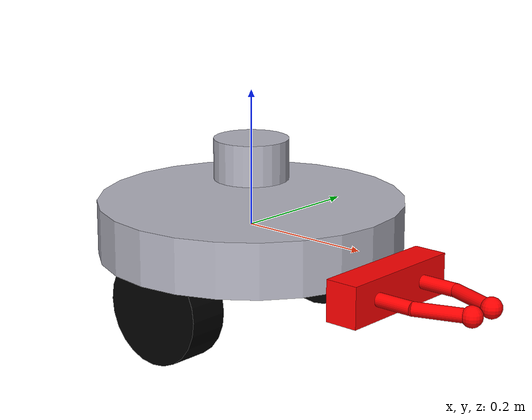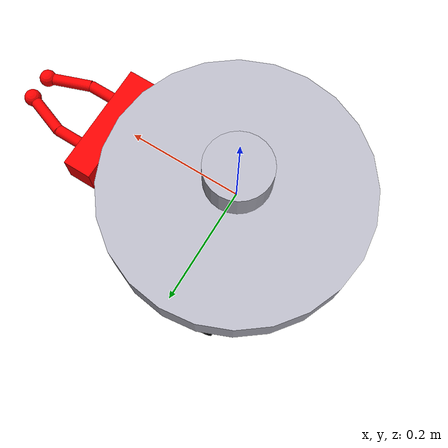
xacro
<?xml version="1.0"?>
<robot xmlns:xacro="http://www.ros.org/wiki/xacro" name="gpu_slam_bot">

  <!-- Robot parameters -->
  <xacro:property name="base_radius" value="0.225"/> <!-- Equivalent to your length/2 -->
  <xacro:property name="base_height" value="0.08"/>
  <xacro:property name="wheel_radius" value="0.08"/>
  <xacro:property name="wheel_width" value="0.06"/>
  <xacro:property name="wheel_separation" value="0.35"/>
  <xacro:property name="caster_radius" value="0.03"/>
  <xacro:property name="pusher_depth" value="0.05"/>
  <xacro:property name="pusher_width" value="0.20"/>
  <xacro:property name="pusher_height" value="0.06"/>
  <xacro:property name="arm_length" value="0.08"/>
  <xacro:property name="tip_length" value="0.08"/>
  <xacro:property name="arm_radius" value="0.01"/>
  <xacro:property name="sphere_radius" value="0.015"/>
  <xacro:property name="arm_mass" value="0.05"/>
  <xacro:property name="tip_mass" value="0.05"/>
  <xacro:property name="sphere_mass" value="0.015"/>
  <xacro:property name="gripper_arm_separation" value="0.10"/>
  <xacro:property name="curve_angle" value="0.349"/>

  <!-- Materials -->
  <material name="metallic_gray"><color rgba="0.7 0.7 0.75 1"/></material>
  <material name="wheel_black"><color rgba="0 0 0 1"/></material>
  <material name="stripe_green"><color rgba="0 1 0 1"/></material>
  <material name="pusher_red"><color rgba="1 0 0 1"/></material>

  <!-- Base link - Now cylindrical for round appearance -->
  <link name="base_link">
    <visual>
      <origin xyz="0 0 0" rpy="0 0 0"/>
      <geometry>
        <cylinder length="${base_height}" radius="${base_radius}"/>
      </geometry>
      <material name="metallic_gray"/>
    </visual>
    <collision>
      <origin xyz="0 0 0" rpy="0 0 0"/>
      <geometry>
        <cylinder length="${base_height}" radius="${base_radius}"/>
      </geometry>
    </collision>
    <inertial>
      <origin xyz="0 0 0"/>
      <mass value="3.0"/>
      <inertia ixx="${(1/12)*3.0*(3*base_radius*base_radius + base_height*base_height)}"
               iyy="${(1/12)*3.0*(3*base_radius*base_radius + base_height*base_height)}"
               izz="${0.5*3.0*base_radius*base_radius}"
               ixy="0" ixz="0" iyz="0"/>
    </inertial>
  </link>

  <!-- Lidar -->
  <link name="lidar_link">
    <visual>
      <origin xyz="0 0 0.03" rpy="0 0 0"/>
      <geometry>
        <cylinder length="0.06" radius="0.055"/>
      </geometry>
      <material name="metallic_gray"/>
    </visual>
    <collision>
      <origin xyz="0 0 0.03" rpy="0 0 0"/>
      <geometry>
        <cylinder length="0.06" radius="0.055"/>
      </geometry>
    </collision>
    <inertial>
      <origin xyz="0 0 0.03"/>
      <mass value="0.2"/>
      <inertia ixx="0.0004" iyy="0.0004" izz="0.0003" ixy="0" ixz="0" iyz="0"/>
    </inertial>
  </link>

  <joint name="lidar_joint" type="fixed">
    <parent link="base_link"/>
    <child link="lidar_link"/>
    <origin xyz="0 0 ${base_height/2 + 0.03}" rpy="0 0 0"/>
  </joint>

  <!-- Left Wheel -->
  <link name="wheel_left">
    <visual>
      <origin xyz="0 0 0" rpy="1.5708 0 0"/>
      <geometry>
        <cylinder length="${wheel_width}" radius="${wheel_radius}"/>
      </geometry>
      <material name="wheel_black"/>
    </visual>
    <collision>
      <origin xyz="0 0 0" rpy="1.5708 0 0"/>
      <geometry>
        <cylinder length="${wheel_width}" radius="${wheel_radius}"/>
      </geometry>
    </collision>
    <inertial>
      <origin xyz="0 0 0"/>
      <mass value="1.5"/>
      <inertia ixx="${(1/12)*1.5*(3*wheel_radius*wheel_radius + wheel_width*wheel_width)}"
               iyy="${0.5*1.5*wheel_radius*wheel_radius}"
               izz="${(1/12)*1.5*(3*wheel_radius*wheel_radius + wheel_width*wheel_width)}"
               ixy="0" ixz="0" iyz="0"/>
    </inertial>
  </link>

  <!-- Right Wheel -->
  <link name="wheel_right">
    <visual>
      <origin xyz="0 0 0" rpy="1.5708 0 0"/>
      <geometry>
        <cylinder length="${wheel_width}" radius="${wheel_radius}"/>
      </geometry>
      <material name="wheel_black"/>
    </visual>
    <collision>
      <origin xyz="0 0 0" rpy="1.5708 0 0"/>
      <geometry>
        <cylinder length="${wheel_width}" radius="${wheel_radius}"/>
      </geometry>
    </collision>
    <inertial>
      <origin xyz="0 0 0"/>
      <mass value="1.5"/>
      <inertia ixx="${(1/12)*1.5*(3*wheel_radius*wheel_radius + wheel_width*wheel_width)}"
               iyy="${0.5*1.5*wheel_radius*wheel_radius}"
               izz="${(1/12)*1.5*(3*wheel_radius*wheel_radius + wheel_width*wheel_width)}"
               ixy="0" ixz="0" iyz="0"/>
    </inertial>
  </link>

  <!-- Wheel joints -->
  <joint name="wheel_left_joint" type="continuous">
    <parent link="base_link"/>
    <child link="wheel_left"/>
    <origin xyz="0 ${wheel_separation/2} ${-wheel_radius}" rpy="0 0 0"/>
    <axis xyz="0 1 0"/>
    <dynamics damping="0.1" friction="0.1"/>
  </joint>

  <joint name="wheel_right_joint" type="continuous">
    <parent link="base_link"/>
    <child link="wheel_right"/>
    <origin xyz="0 ${-wheel_separation/2} ${-wheel_radius}" rpy="0 0 0"/>
    <axis xyz="0 1 0"/>
    <dynamics damping="0.1" friction="0.1"/>
  </joint>

  <!-- Caster - Adjusted position for cylindrical base -->
  <link name="caster_link">
    <visual>
      <origin xyz="0 0 0" rpy="0 0 0"/>
      <geometry><sphere radius="${caster_radius}"/></geometry>
      <material name="metallic_gray"/>
    </visual>
    <collision>
      <origin xyz="0 0 0" rpy="0 0 0"/>
      <geometry><sphere radius="${caster_radius}"/></geometry>
    </collision>
    <inertial>
      <origin xyz="0 0 0"/>
      <mass value="0.1"/>
      <inertia ixx="${(2/5)*0.1*caster_radius*caster_radius}"
               iyy="${(2/5)*0.1*caster_radius*caster_radius}"
               izz="${(2/5)*0.1*caster_radius*caster_radius}"
               ixy="0" ixz="0" iyz="0"/>
    </inertial>
  </link>

  <joint name="caster_joint" type="fixed">
    <parent link="base_link"/>
    <child link="caster_link"/>
    <origin xyz="-${base_radius - 0.05} 0 ${-wheel_radius + caster_radius - 0.005}" rpy="0 0 0"/>
  </joint>

  <!-- Gripper base -->
  <link name="gripper_base_link">
    <visual>
      <origin xyz="0 0 0" rpy="0 0 0"/>
      <geometry><box size="${pusher_depth} ${pusher_width} ${pusher_height}"/></geometry>
      <material name="pusher_red"/>
    </visual>
    <collision>
      <origin xyz="0 0 0" rpy="0 0 0"/>
      <geometry><box size="${pusher_depth} ${pusher_width} ${pusher_height}"/></geometry>
    </collision>
    <inertial>
      <origin xyz="0 0 0"/>
      <mass value="0.1"/>
      <inertia ixx="${(1/12)*0.1*(pusher_width*pusher_width + pusher_height*pusher_height)}"
               iyy="${(1/12)*0.1*(pusher_depth*pusher_depth + pusher_height*pusher_height)}"
               izz="${(1/12)*0.1*(pusher_depth*pusher_depth + pusher_width*pusher_width)}"
               ixy="0" ixz="0" iyz="0"/>
    </inertial>
  </link>

  <joint name="front_lifter_joint" type="prismatic">
    <parent link="base_link"/>
    <child link="gripper_base_link"/>
    <origin xyz="${base_radius + pusher_depth/2} 0 ${-base_height/2}" rpy="0 0 0"/>
    <axis xyz="0 0 1"/>
    <limit effort="15" velocity="0.2" lower="0.0" upper="0.25"/>
    <dynamics damping="0.1" friction="0.1"/>
  </joint>

  <!-- Left gripper arm (proximal) -->
  <link name="left_arm_link">
    <visual>
      <origin xyz="${arm_length/2} 0 0" rpy="0 1.5708 0"/>
      <geometry><cylinder length="${arm_length}" radius="${arm_radius}"/></geometry>
      <material name="pusher_red"/>
    </visual>
    <collision>
      <origin xyz="${arm_length/2} 0 0" rpy="0 1.5708 0"/>
      <geometry><cylinder length="${arm_length}" radius="${arm_radius}"/></geometry>
    </collision>
    <inertial>
      <origin xyz="0 0 0"/>
      <mass value="${arm_mass}"/>
      <inertia ixx="${0.5 * arm_mass * arm_radius * arm_radius}"
               iyy="${(1/4)*arm_mass*arm_radius*arm_radius + (1/12)*arm_mass*arm_length*arm_length}"
               izz="${(1/4)*arm_mass*arm_radius*arm_radius + (1/12)*arm_mass*arm_length*arm_length}"
               ixy="0" ixz="0" iyz="0"/>
    </inertial>
  </link>

  <joint name="left_gripper_joint" type="revolute">
    <parent link="gripper_base_link"/>
    <child link="left_arm_link"/>
    <origin xyz="0 ${gripper_arm_separation/2} 0" rpy="0 0 0"/>
    <axis xyz="0 0 1"/>
    <limit effort="30" velocity="2.0" lower="-0.523" upper="0.523"/>
    <dynamics damping="0.2" friction="0.05"/>
  </joint>

  <!-- Left tip (distal, curved) -->
  <link name="left_tip_link">
    <visual>
      <origin xyz="${tip_length/2} 0 0" rpy="0 1.5708 0"/>
      <geometry><cylinder length="${tip_length}" radius="${arm_radius}"/></geometry>
      <material name="pusher_red"/>
    </visual>
    <collision>
      <origin xyz="${tip_length/2} 0 0" rpy="0 1.5708 0"/>
      <geometry><cylinder length="${tip_length}" radius="${arm_radius}"/></geometry>
    </collision>
    <inertial>
      <origin xyz="0 0 0"/>
      <mass value="${tip_mass}"/>
      <inertia ixx="${0.5 * tip_mass * arm_radius * arm_radius}"
               iyy="${(1/4)*tip_mass*arm_radius*arm_radius + (1/12)*tip_mass*tip_length*tip_length}"
               izz="${(1/4)*tip_mass*arm_radius*arm_radius + (1/12)*tip_mass*tip_length*tip_length}"
               ixy="0" ixz="0" iyz="0"/>
    </inertial>
  </link>

  <joint name="left_tip_joint" type="fixed">
    <parent link="left_arm_link"/>
    <child link="left_tip_link"/>
    <origin xyz="${arm_length} 0 0" rpy="0 0 -${curve_angle}"/>
  </joint>

  <!-- Left tip sphere (rounded tip) -->
  <link name="left_sphere_link">
    <visual>
      <origin xyz="0 0 0" rpy="0 0 0"/>
      <geometry><sphere radius="${sphere_radius}"/></geometry>
      <material name="pusher_red"/>
    </visual>
    <collision name="left_sphere_link_collision">
      <origin xyz="0 0 0" rpy="0 0 0"/>
      <geometry><sphere radius="${sphere_radius}"/></geometry>
    </collision>
    <inertial>
      <origin xyz="0 0 0"/>
      <mass value="${sphere_mass}"/>
      <inertia ixx="${(2/5)*sphere_mass*sphere_radius*sphere_radius}"
               iyy="${(2/5)*sphere_mass*sphere_radius*sphere_radius}"
               izz="${(2/5)*sphere_mass*sphere_radius*sphere_radius}"
               ixy="0" ixz="0" iyz="0"/>
    </inertial>
  </link>

  <joint name="left_sphere_joint" type="fixed">
    <parent link="left_tip_link"/>
    <child link="left_sphere_link"/>
    <origin xyz="${tip_length} 0 0" rpy="0 0 0"/>
  </joint>

  <!-- Right gripper arm (proximal) -->
  <link name="right_arm_link">
    <visual>
      <origin xyz="${arm_length/2} 0 0" rpy="0 1.5708 0"/>
      <geometry><cylinder length="${arm_length}" radius="${arm_radius}"/></geometry>
      <material name="pusher_red"/>
    </visual>
    <collision>
      <origin xyz="${arm_length/2} 0 0" rpy="0 1.5708 0"/>
      <geometry><cylinder length="${arm_length}" radius="${arm_radius}"/></geometry>
    </collision>
    <inertial>
      <origin xyz="0 0 0"/>
      <mass value="${arm_mass}"/>
      <inertia ixx="${0.5 * arm_mass * arm_radius * arm_radius}"
               iyy="${(1/4)*arm_mass*arm_radius*arm_radius + (1/12)*arm_mass*arm_length*arm_length}"
               izz="${(1/4)*arm_mass*arm_radius*arm_radius + (1/12)*arm_mass*arm_length*arm_length}"
               ixy="0" ixz="0" iyz="0"/>
    </inertial>
  </link>

  <joint name="right_gripper_joint" type="revolute">
    <parent link="gripper_base_link"/>
    <child link="right_arm_link"/>
    <origin xyz="0 ${-gripper_arm_separation/2} 0" rpy="0 0 0"/>
    <axis xyz="0 0 1"/>
    <limit effort="30" velocity="2.0" lower="-0.523" upper="0.523"/>
    <dynamics damping="0.2" friction="0.05"/>
    <mimic joint="left_gripper_joint" multiplier="-1" offset="0"/>
  </joint>

  <!-- Right tip (distal, curved) -->
  <link name="right_tip_link">
    <visual>
      <origin xyz="${tip_length/2} 0 0" rpy="0 1.5708 0"/>
      <geometry><cylinder length="${tip_length}" radius="${arm_radius}"/></geometry>
      <material name="pusher_red"/>
    </visual>
    <collision>
      <origin xyz="${tip_length/2} 0 0" rpy="0 1.5708 0"/>
      <geometry><cylinder length="${tip_length}" radius="${arm_radius}"/></geometry>
    </collision>
    <inertial>
      <origin xyz="0 0 0"/>
      <mass value="${tip_mass}"/>
      <inertia ixx="${0.5 * tip_mass * arm_radius * arm_radius}"
               iyy="${(1/4)*tip_mass*arm_radius*arm_radius + (1/12)*tip_mass*tip_length*tip_length}"
               izz="${(1/4)*tip_mass*arm_radius*arm_radius + (1/12)*tip_mass*tip_length*tip_length}"
               ixy="0" ixz="0" iyz="0"/>
    </inertial>
  </link>

  <joint name="right_tip_joint" type="fixed">
    <parent link="right_arm_link"/>
    <child link="right_tip_link"/>
    <origin xyz="${arm_length} 0 0" rpy="0 0 ${curve_angle}"/>
  </joint>

  <!-- Right tip sphere (rounded tip) -->
  <link name="right_sphere_link">
    <visual>
      <origin xyz="0 0 0" rpy="0 0 0"/>
      <geometry><sphere radius="${sphere_radius}"/></geometry>
      <material name="pusher_red"/>
    </visual>
    <collision name="right_sphere_link_collision">
      <origin xyz="0 0 0" rpy="0 0 0"/>
      <geometry><sphere radius="${sphere_radius}"/></geometry>
    </collision>
    <inertial>
      <origin xyz="0 0 0"/>
      <mass value="${sphere_mass}"/>
      <inertia ixx="${(2/5)*sphere_mass*sphere_radius*sphere_radius}"
               iyy="${(2/5)*sphere_mass*sphere_radius*sphere_radius}"
               izz="${(2/5)*sphere_mass*sphere_radius*sphere_radius}"
               ixy="0" ixz="0" iyz="0"/>
    </inertial>
  </link>

  <joint name="right_sphere_joint" type="fixed">
    <parent link="right_tip_link"/>
    <child link="right_sphere_link"/>
    <origin xyz="${tip_length} 0 0" rpy="0 0 0"/>
  </joint>

  <!-- Contact sensors -->
  <gazebo reference="left_sphere_link">
    <sensor name="left_contact_sensor" type="contact">
      <always_on>true</always_on>
      <update_rate>200</update_rate>
      <contact>
        <collision>left_sphere_link_collision</collision>
      </contact>
      <plugin name="left_contact_plugin" filename="libgazebo_ros_contact.so">
        <ros>
          <namespace>/</namespace>
          <remapping>left_gripper_contact:=left_gripper_contact</remapping>
        </ros>
        <topic_name>left_gripper_contact</topic_name>
        <frame_name>left_sphere_link</frame_name>
      </plugin>
    </sensor>
    <material>Gazebo/Red</material>
    <surface>
      <friction>
        <ode>
          <mu>0.4</mu>
          <mu2>0.4</mu2>
        </ode>
      </friction>
      <bounce>
        <restitution_coefficient>0.05</restitution_coefficient>
        <threshold>0.01</threshold>
      </bounce>
    </surface>
  </gazebo>

  <gazebo reference="right_sphere_link">
    <sensor name="right_contact_sensor" type="contact">
      <always_on>true</always_on>
      <update_rate>200</update_rate>
      <contact>
        <collision>right_sphere_link_collision</collision>
      </contact>
      <plugin name="right_contact_plugin" filename="libgazebo_ros_contact.so">
        <ros>
          <namespace>/</namespace>
          <remapping>right_gripper_contact:=right_gripper_contact</remapping>
        </ros>
        <topic_name>right_gripper_contact</topic_name>
        <frame_name>right_sphere_link</frame_name>
      </plugin>
    </sensor>
    <material>Gazebo/Red</material>
    <surface>
      <friction>
        <ode>
          <mu>0.4</mu>
          <mu2>0.4</mu2>
        </ode>
      </friction>
      <bounce>
        <restitution_coefficient>0.05</restitution_coefficient>
        <threshold>0.01</threshold>
      </bounce>
    </surface>
  </gazebo>

  <!-- Gazebo diff_drive plugin -->
  <gazebo>
    <plugin name="diff_drive" filename="libgazebo_ros_diff_drive.so">
      <ros>
        <namespace>/</namespace>
      </ros>
      <update_rate>100</update_rate>
      <left_joint>wheel_left_joint</left_joint>
      <right_joint>wheel_right_joint</right_joint>
      <wheel_separation>${wheel_separation}</wheel_separation>
      <wheel_diameter>${2*wheel_radius}</wheel_diameter>
      <max_wheel_torque>75.0</max_wheel_torque>
      <max_wheel_acceleration>15.0</max_wheel_acceleration>
      <command_topic>cmd_vel</command_topic>
      <odometry_topic>odom</odometry_topic>
      <odometry_frame>odom</odometry_frame>
      <robot_base_frame>base_link</robot_base_frame>
      <publish_odom>true</publish_odom>
      <publish_wheel_tf>true</publish_wheel_tf>
      <publish_tf>true</publish_tf>
      <publish_odom_tf>true</publish_odom_tf>
    </plugin>
  </gazebo>

  <!-- Gazebo plugin for lifter control -->
  <gazebo>
    <plugin name="lifter_position_controller" filename="libgazebo_ros_joint_pose_trajectory.so">
      <ros>
        <namespace>/</namespace>
        <remapping>front_lifter_cmd:=front_lifter_cmd</remapping>
      </ros>
      <joint_name>front_lifter_joint</joint_name>
      <topic_name>front_lifter_cmd</topic_name>
    </plugin>
  </gazebo>

  <!-- Gazebo plugin for left gripper control -->
  <gazebo>
    <plugin name="gripper_position_controller_left" filename="libgazebo_ros_joint_pose_trajectory.so">
      <ros>
        <namespace>/</namespace>
        <remapping>gripper_cmd:=gripper_cmd</remapping>
      </ros>
      <joint_name>left_gripper_joint</joint_name>
      <topic_name>gripper_cmd</topic_name>
    </plugin>
  </gazebo>

  <!-- Gazebo plugin for right gripper control -->
  <gazebo>
    <plugin name="gripper_position_controller_right" filename="libgazebo_ros_joint_pose_trajectory.so">
      <ros>
        <namespace>/</namespace>
        <remapping>gripper_cmd:=gripper_cmd</remapping>
      </ros>
      <joint_name>right_gripper_joint</joint_name>
      <topic_name>gripper_cmd</topic_name>
    </plugin>
  </gazebo>

  <!-- Gazebo materials and physics -->
  <gazebo reference="base_link">
    <material>Gazebo/Grey</material>
  </gazebo>

  <gazebo reference="lidar_link">
    <material>Gazebo/Grey</material>
  </gazebo>

  <gazebo reference="gripper_base_link">
    <material>Gazebo/Red</material>
  </gazebo>

  <gazebo reference="left_arm_link">
    <material>Gazebo/Red</material>
  </gazebo>

  <gazebo reference="left_tip_link">
    <material>Gazebo/Red</material>
  </gazebo>

  <gazebo reference="right_arm_link">
    <material>Gazebo/Red</material>
  </gazebo>

  <gazebo reference="right_tip_link">
    <material>Gazebo/Red</material>
  </gazebo>

  <!-- Wheel physics properties -->
  <gazebo reference="wheel_left">
    <material>Gazebo/Black</material>
    <surface>
      <friction>
        <ode>
          <mu>1.2</mu>
          <mu2>1.2</mu2>
          <fdir1>1 0 0</fdir1>
          <slip1>0.0</slip1>
          <slip2>0.0</slip2>
        </ode>
      </friction>
    </surface>
  </gazebo>

  <gazebo reference="wheel_right">
    <material>Gazebo/Black</material>
    <surface>
      <friction>
        <ode>
          <mu>1.2</mu>
          <mu2>1.2</mu2>
          <fdir1>1 0 0</fdir1>
          <slip1>0.0</slip1>
          <slip2>0.0</slip2>
        </ode>
      </friction>
    </surface>
  </gazebo>

  <!-- Caster physics -->
  <gazebo reference="caster_link">
    <material>Gazebo/Grey</material>
    <surface>
      <friction>
        <ode>
          <mu>0.01</mu>
          <mu2>0.01</mu2>
        </ode>
      </friction>
    </surface>
  </gazebo>

</robot>
